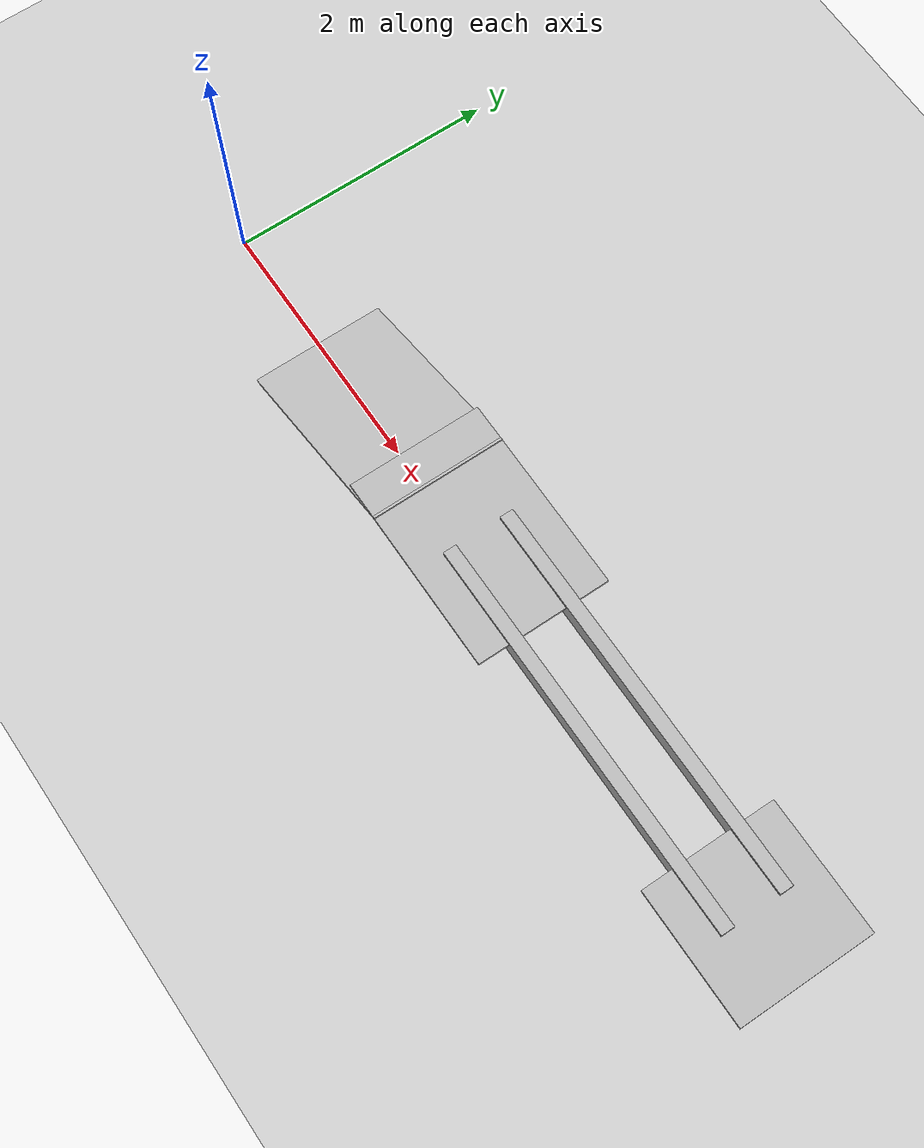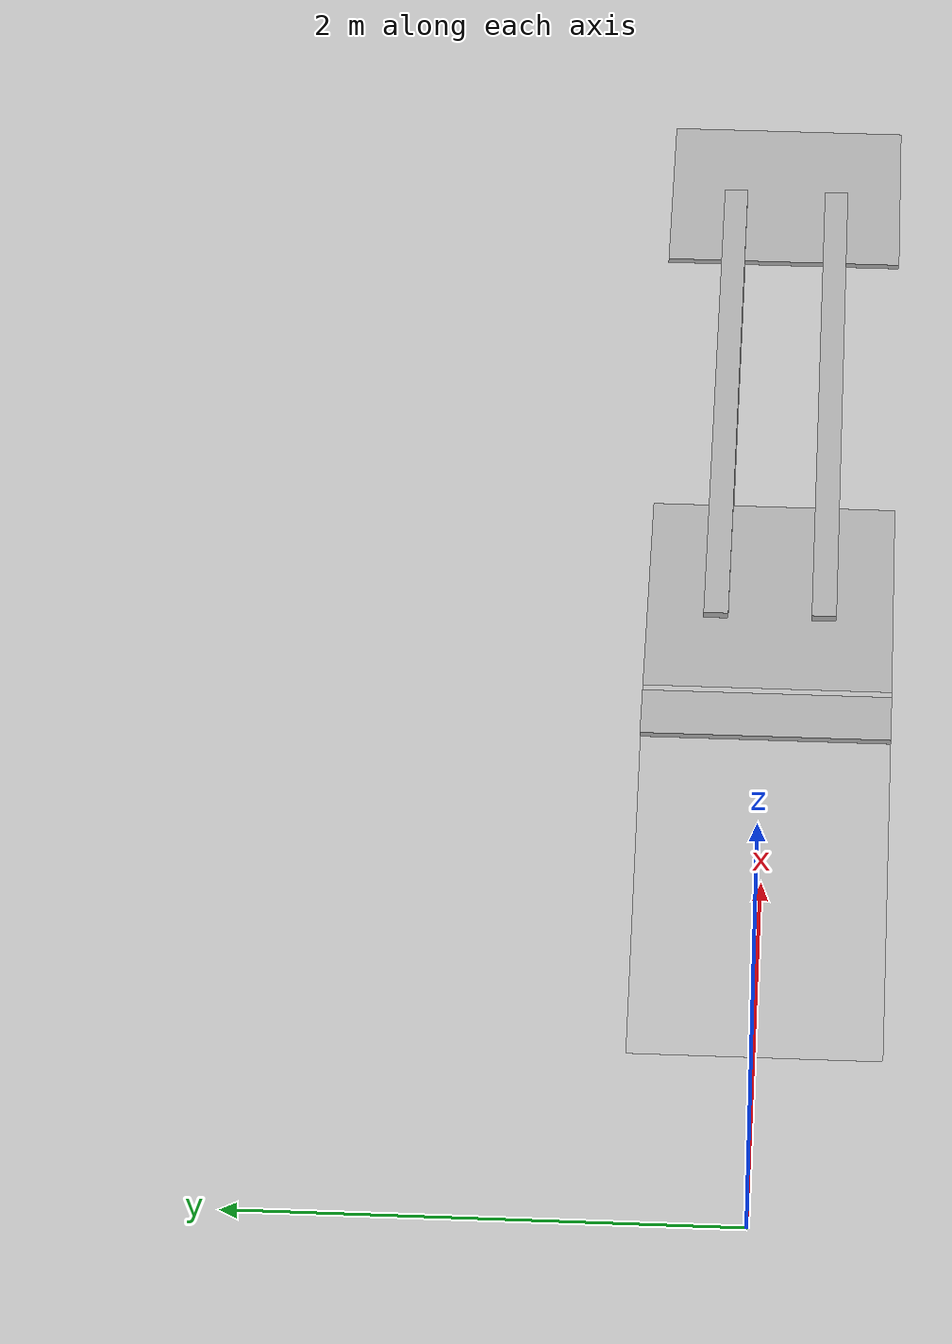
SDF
<?xml version="1.0" ?>
<sdf version="1.4">
  <world name="default">
    <include>
      <uri>model://ground_plane</uri>
    </include>
    <include>
      <uri>model://sun</uri>
    </include>
    <include>
    <uri>model://gazebo_worlds/models/rails_high</uri>
      <pose>0 0 0 0 0 0</pose>
      <static>true</static>
    </include>

    <physics type="ode">
      <gravity>0 0 -9.81</gravity>
    </physics>
  </world>
</sdf>

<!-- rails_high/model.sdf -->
<sdf version='1.4'>
  <model name="rails_high">
    <static>true</static>

    <link name='rail_1'>
      <pose>4.5 0.22 0.5 0.0 0.0 1.57079632679</pose>
      <collision name='collision'>
        <geometry>
          <box>
            <size>0.1 3.0 0.17</size>
          </box>
        </geometry>
      </collision>
      <visual name='visual'>
        <geometry>
          <box>
            <size>0.1 3.0 0.17</size>
          </box>
        </geometry>
      </visual>
    </link>

    <link name='rail_2'>
      <pose>4.5 -0.22 0.5 0.0 0.0 1.57079632679</pose>
      <collision name='collision'>
        <geometry>
          <box>
            <size>0.1 3.0 0.17</size>
          </box>
        </geometry>
      </collision>
      <visual name='visual'>
        <geometry>
          <box>
            <size>0.1 3.0 0.17</size>
          </box>
        </geometry>
      </visual>
    </link>

    <link name='platform_1'>
      <pose>3.0 0.0 0.55 0.0 0.0 0.0</pose>
      <collision name='collision'>
        <geometry>
          <box>
            <size>1.5 1.0 0.02</size>
          </box>
        </geometry>
      </collision>
      <visual name='visual'>
        <geometry>
          <box>
            <size>1.5 1.0 0.02</size>
          </box>
        </geometry>
      </visual>
    </link>

    <link name='platform_2'>
      <pose>6.0 0.0 0.55 0.0 0.0 0.0</pose>
      <collision name='collision'>
        <geometry>
          <box>
            <size>1.0 1.0 0.02</size>
          </box>
        </geometry>
      </collision>
      <visual name='visual'>
        <geometry>
          <box>
            <size>1.0 1.0 0.02</size>
          </box>
        </geometry>
      </visual>
    </link>

    <link name='ramp_1'>
      <pose>1.7 0.0 0.25 0.0 -0.35 0.0</pose>
      <collision name='collision'>
        <geometry>
          <box>
            <size>1.8 1.0 0.02</size>
          </box>
        </geometry>
      </collision>
      <visual name='visual'>
        <geometry>
          <box>
            <size>1.8 1.0 0.02</size>
          </box>
        </geometry>
      </visual>
    </link>

  </model>
</sdf>
